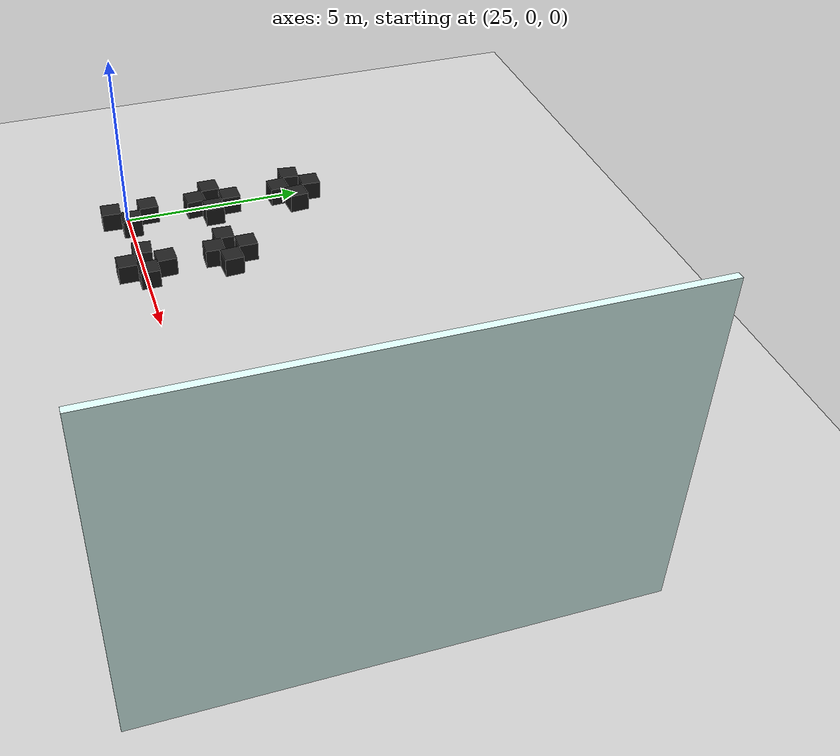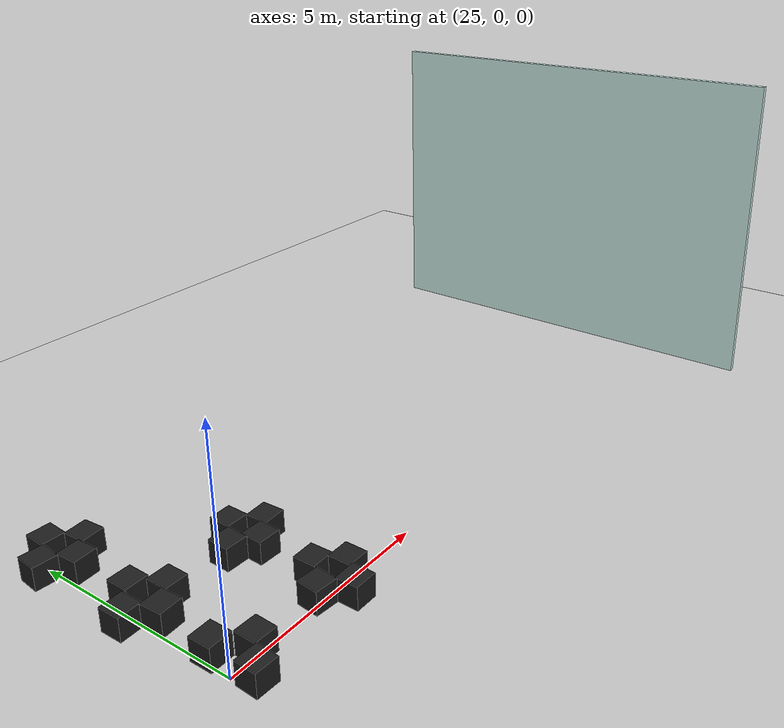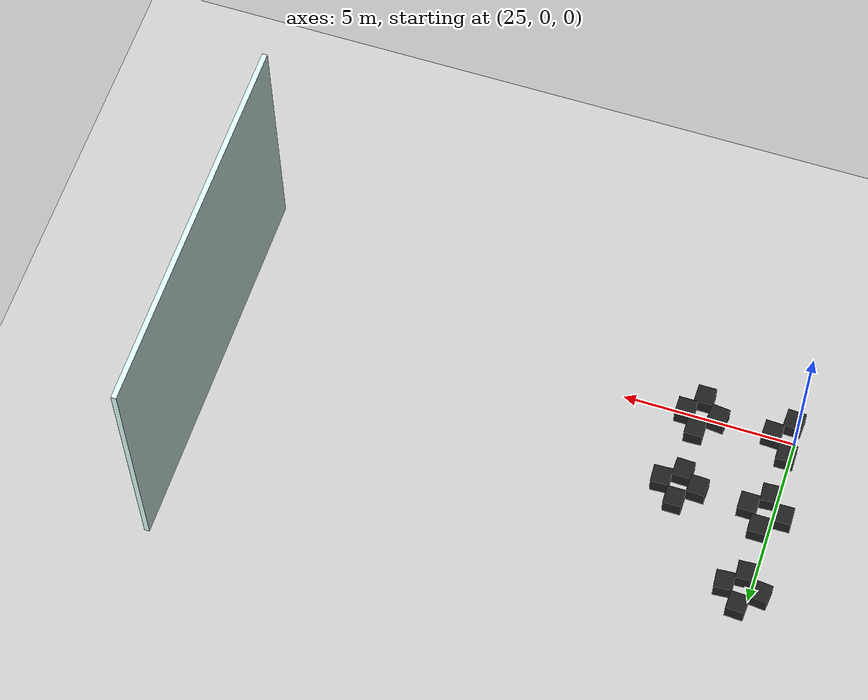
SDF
<sdf version="1.6">
 <world name="default">
  <model name="ground_plane">
   <static>1</static>
   <link name="link">
    <collision name="collision">
     <geometry><plane><normal>0 0 1</normal><size>100 100</size></plane></geometry>
     <surface>
      <contact><collide_bitmask>65535</collide_bitmask></contact>
      <friction><ode><mu>100</mu><mu2>50</mu2></ode></friction>
     </surface>
    </collision>
    <visual name="visual">
     <cast_shadows>0</cast_shadows>
     <geometry><plane><normal>0 0 1</normal><size>100 100</size></plane></geometry>
     <material>
      <script><uri>file://media/materials/scripts/gazebo.material</uri><name>Gazebo/Grey</name></script>
     </material>
    </visual>
   </link>
  </model>
  <model name="unit_box_0_clone_22_clone_15_clone_19">
   <link name="link">
    <inertial>
     <mass>1</mass>
     <inertia>
      <ixx>0.166667</ixx>
      <ixy>0</ixy>
      <ixz>0</ixz>
      <iyy>0.166667</iyy>
      <iyz>0</iyz>
      <izz>0.166667</izz>
     </inertia>
    </inertial>
    <visual name="visual">
     <geometry><box><size>0.530101 0.530101 0.530101</size></box></geometry>
     <material>
      <script><name>Gazebo/FlatBlack</name><uri>file://media/materials/scripts/gazebo.material</uri></script>
      <shader type="pixel"><normal_map>__default__</normal_map></shader>
      <ambient>0.1 0.1 0.1 1</ambient>
      <diffuse>0.1 0.1 0.1 1</diffuse>
      <specular>0.01 0.01 0.01 1</specular>
      <emissive>0 0 0 1</emissive>
     </material>
    </visual>
    <collision name="collision">
     <geometry><box><size>0.530101 0.530101 0.530101</size></box></geometry>
     <surface>
      <friction>
       <ode><mu>1</mu><mu2>1</mu2><fdir1>0 0 0</fdir1><slip1>0</slip1><slip2>0</slip2></ode>
       <torsional>
        <coefficient>1</coefficient>
        <patch_radius>0</patch_radius>
        <surface_radius>0</surface_radius>
        <use_patch_radius>1</use_patch_radius>
        <ode><slip>0</slip></ode>
       </torsional>
      </friction>
      <bounce><restitution_coefficient>0</restitution_coefficient><threshold>1e+06</threshold></bounce>
      <contact>
       <collide_without_contact>0</collide_without_contact>
       <collide_without_contact_bitmask>1</collide_without_contact_bitmask>
       <collide_bitmask>1</collide_bitmask>
       <ode>
        <soft_cfm>0</soft_cfm>
        <soft_erp>0.2</soft_erp>
        <kp>1e+13</kp>
        <kd>1</kd>
        <max_vel>0.01</max_vel>
        <min_depth>0</min_depth>
       </ode>
       <bullet>
        <split_impulse>1</split_impulse>
        <split_impulse_penetration_threshold>-0.01</split_impulse_penetration_threshold>
        <soft_cfm>0</soft_cfm>
        <soft_erp>0.2</soft_erp>
        <kp>1e+13</kp>
        <kd>1</kd>
       </bullet>
      </contact>
     </surface>
    </collision>
   </link>
   <static>0</static>
   <pose>25.1706 -0.484055 0.314113 0 0 -0.043482</pose>
  </model>
  <model name="unit_box_0_clone_22_clone_15_clone_20">
   <link name="link">
    <inertial>
     <mass>1</mass>
     <inertia>
      <ixx>0.166667</ixx>
      <ixy>0</ixy>
      <ixz>0</ixz>
      <iyy>0.166667</iyy>
      <iyz>0</iyz>
      <izz>0.166667</izz>
     </inertia>
    </inertial>
    <visual name="visual">
     <geometry><box><size>0.530101 0.530101 0.530101</size></box></geometry>
     <material>
      <script><name>Gazebo/FlatBlack</name><uri>file://media/materials/scripts/gazebo.material</uri></script>
      <shader type="pixel"><normal_map>__default__</normal_map></shader>
      <ambient>0.1 0.1 0.1 1</ambient>
      <diffuse>0.1 0.1 0.1 1</diffuse>
      <specular>0.01 0.01 0.01 1</specular>
      <emissive>0 0 0 1</emissive>
     </material>
    </visual>
    <collision name="collision">
     <geometry><box><size>0.530101 0.530101 0.530101</size></box></geometry>
     <surface>
      <friction>
       <ode><mu>1</mu><mu2>1</mu2><fdir1>0 0 0</fdir1><slip1>0</slip1><slip2>0</slip2></ode>
       <torsional>
        <coefficient>1</coefficient>
        <patch_radius>0</patch_radius>
        <surface_radius>0</surface_radius>
        <use_patch_radius>1</use_patch_radius>
        <ode><slip>0</slip></ode>
       </torsional>
      </friction>
      <bounce><restitution_coefficient>0</restitution_coefficient><threshold>1e+06</threshold></bounce>
      <contact>
       <collide_without_contact>0</collide_without_contact>
       <collide_without_contact_bitmask>1</collide_without_contact_bitmask>
       <collide_bitmask>1</collide_bitmask>
       <ode>
        <soft_cfm>0</soft_cfm>
        <soft_erp>0.2</soft_erp>
        <kp>1e+13</kp>
        <kd>1</kd>
        <max_vel>0.01</max_vel>
        <min_depth>0</min_depth>
       </ode>
       <bullet>
        <split_impulse>1</split_impulse>
        <split_impulse_penetration_threshold>-0.01</split_impulse_penetration_threshold>
        <soft_cfm>0</soft_cfm>
        <soft_erp>0.2</soft_erp>
        <kp>1e+13</kp>
        <kd>1</kd>
       </bullet>
      </contact>
     </surface>
    </collision>
   </link>
   <static>0</static>
   <pose>25.6728 0.028117 0.314112 0 0 -0.03057</pose>
  </model>
  <model name="unit_box_0_clone_22_clone_15_clone_22">
   <link name="link">
    <inertial>
     <mass>1</mass>
     <inertia>
      <ixx>0.166667</ixx>
      <ixy>0</ixy>
      <ixz>0</ixz>
      <iyy>0.166667</iyy>
      <iyz>0</iyz>
      <izz>0.166667</izz>
     </inertia>
    </inertial>
    <visual name="visual">
     <geometry><box><size>0.530101 0.530101 0.530101</size></box></geometry>
     <material>
      <script><name>Gazebo/FlatBlack</name><uri>file://media/materials/scripts/gazebo.material</uri></script>
      <shader type="pixel"><normal_map>__default__</normal_map></shader>
      <ambient>0.1 0.1 0.1 1</ambient>
      <diffuse>0.1 0.1 0.1 1</diffuse>
      <specular>0.01 0.01 0.01 1</specular>
      <emissive>0 0 0 1</emissive>
     </material>
    </visual>
    <collision name="collision">
     <geometry><box><size>0.530101 0.530101 0.530101</size></box></geometry>
     <surface>
      <friction>
       <ode><mu>1</mu><mu2>1</mu2><fdir1>0 0 0</fdir1><slip1>0</slip1><slip2>0</slip2></ode>
       <torsional>
        <coefficient>1</coefficient>
        <patch_radius>0</patch_radius>
        <surface_radius>0</surface_radius>
        <use_patch_radius>1</use_patch_radius>
        <ode><slip>0</slip></ode>
       </torsional>
      </friction>
      <bounce><restitution_coefficient>0</restitution_coefficient><threshold>1e+06</threshold></bounce>
      <contact>
       <collide_without_contact>0</collide_without_contact>
       <collide_without_contact_bitmask>1</collide_without_contact_bitmask>
       <collide_bitmask>1</collide_bitmask>
       <ode>
        <soft_cfm>0</soft_cfm>
        <soft_erp>0.2</soft_erp>
        <kp>1e+13</kp>
        <kd>1</kd>
        <max_vel>0.01</max_vel>
        <min_depth>0</min_depth>
       </ode>
       <bullet>
        <split_impulse>1</split_impulse>
        <split_impulse_penetration_threshold>-0.01</split_impulse_penetration_threshold>
        <soft_cfm>0</soft_cfm>
        <soft_erp>0.2</soft_erp>
        <kp>1e+13</kp>
        <kd>1</kd>
       </bullet>
      </contact>
     </surface>
    </collision>
   </link>
   <static>0</static>
   <pose>25.1336 0.576128 0.314109 6e-06 -9e-06 0.009665</pose>
  </model>
  <model name="unit_box_0_clone_22_clone_15_clone_23">
   <link name="link">
    <inertial>
     <mass>1</mass>
     <inertia>
      <ixx>0.166667</ixx>
      <ixy>0</ixy>
      <ixz>0</ixz>
      <iyy>0.166667</iyy>
      <iyz>0</iyz>
      <izz>0.166667</izz>
     </inertia>
    </inertial>
    <visual name="visual">
     <geometry><box><size>0.530101 0.530101 0.530101</size></box></geometry>
     <material>
      <script><name>Gazebo/FlatBlack</name><uri>file://media/materials/scripts/gazebo.material</uri></script>
      <shader type="pixel"><normal_map>__default__</normal_map></shader>
      <ambient>0.1 0.1 0.1 1</ambient>
      <diffuse>0.1 0.1 0.1 1</diffuse>
      <specular>0.01 0.01 0.01 1</specular>
      <emissive>0 0 0 1</emissive>
     </material>
    </visual>
    <collision name="collision">
     <geometry><box><size>0.530101 0.530101 0.530101</size></box></geometry>
     <surface>
      <friction>
       <ode><mu>1</mu><mu2>1</mu2><fdir1>0 0 0</fdir1><slip1>0</slip1><slip2>0</slip2></ode>
       <torsional>
        <coefficient>1</coefficient>
        <patch_radius>0</patch_radius>
        <surface_radius>0</surface_radius>
        <use_patch_radius>1</use_patch_radius>
        <ode><slip>0</slip></ode>
       </torsional>
      </friction>
      <bounce><restitution_coefficient>0</restitution_coefficient><threshold>1e+06</threshold></bounce>
      <contact>
       <collide_without_contact>0</collide_without_contact>
       <collide_without_contact_bitmask>1</collide_without_contact_bitmask>
       <collide_bitmask>1</collide_bitmask>
       <ode>
        <soft_cfm>0</soft_cfm>
        <soft_erp>0.2</soft_erp>
        <kp>1e+13</kp>
        <kd>1</kd>
        <max_vel>0.01</max_vel>
        <min_depth>0</min_depth>
       </ode>
       <bullet>
        <split_impulse>1</split_impulse>
        <split_impulse_penetration_threshold>-0.01</split_impulse_penetration_threshold>
        <soft_cfm>0</soft_cfm>
        <soft_erp>0.2</soft_erp>
        <kp>1e+13</kp>
        <kd>1</kd>
       </bullet>
      </contact>
     </surface>
    </collision>
   </link>
   <static>0</static>
   <pose>27.7786 0.582221 0.314108 8e-06 8e-06 0.026242</pose>
  </model>
  <model name="unit_box_0_clone_22_clone_15_clone_24">
   <link name="link">
    <inertial>
     <mass>1</mass>
     <inertia>
      <ixx>0.166667</ixx>
      <ixy>0</ixy>
      <ixz>0</ixz>
      <iyy>0.166667</iyy>
      <iyz>0</iyz>
      <izz>0.166667</izz>
     </inertia>
    </inertial>
    <visual name="visual">
     <geometry><box><size>0.530101 0.530101 0.530101</size></box></geometry>
     <material>
      <script><name>Gazebo/FlatBlack</name><uri>file://media/materials/scripts/gazebo.material</uri></script>
      <shader type="pixel"><normal_map>__default__</normal_map></shader>
      <ambient>0.1 0.1 0.1 1</ambient>
      <diffuse>0.1 0.1 0.1 1</diffuse>
      <specular>0.01 0.01 0.01 1</specular>
      <emissive>0 0 0 1</emissive>
     </material>
    </visual>
    <collision name="collision">
     <geometry><box><size>0.530101 0.530101 0.530101</size></box></geometry>
     <surface>
      <friction>
       <ode><mu>1</mu><mu2>1</mu2><fdir1>0 0 0</fdir1><slip1>0</slip1><slip2>0</slip2></ode>
       <torsional>
        <coefficient>1</coefficient>
        <patch_radius>0</patch_radius>
        <surface_radius>0</surface_radius>
        <use_patch_radius>1</use_patch_radius>
        <ode><slip>0</slip></ode>
       </torsional>
      </friction>
      <bounce><restitution_coefficient>0</restitution_coefficient><threshold>1e+06</threshold></bounce>
      <contact>
       <collide_without_contact>0</collide_without_contact>
       <collide_without_contact_bitmask>1</collide_without_contact_bitmask>
       <collide_bitmask>1</collide_bitmask>
       <ode>
        <soft_cfm>0</soft_cfm>
        <soft_erp>0.2</soft_erp>
        <kp>1e+13</kp>
        <kd>1</kd>
        <max_vel>0.01</max_vel>
        <min_depth>0</min_depth>
       </ode>
       <bullet>
        <split_impulse>1</split_impulse>
        <split_impulse_penetration_threshold>-0.01</split_impulse_penetration_threshold>
        <soft_cfm>0</soft_cfm>
        <soft_erp>0.2</soft_erp>
        <kp>1e+13</kp>
        <kd>1</kd>
       </bullet>
      </contact>
     </surface>
    </collision>
   </link>
   <static>0</static>
   <pose>28.1914 0.055968 0.314108 -8e-06 8e-06 0.000238</pose>
  </model>
  <model name="unit_box_0_clone_22_clone_15_clone_25">
   <link name="link">
    <inertial>
     <mass>1</mass>
     <inertia>
      <ixx>0.166667</ixx>
      <ixy>0</ixy>
      <ixz>0</ixz>
      <iyy>0.166667</iyy>
      <iyz>0</iyz>
      <izz>0.166667</izz>
     </inertia>
    </inertial>
    <visual name="visual">
     <geometry><box><size>0.530101 0.530101 0.530101</size></box></geometry>
     <material>
      <script><name>Gazebo/FlatBlack</name><uri>file://media/materials/scripts/gazebo.material</uri></script>
      <shader type="pixel"><normal_map>__default__</normal_map></shader>
      <ambient>0.1 0.1 0.1 1</ambient>
      <diffuse>0.1 0.1 0.1 1</diffuse>
      <specular>0.01 0.01 0.01 1</specular>
      <emissive>0 0 0 1</emissive>
     </material>
    </visual>
    <collision name="collision">
     <geometry><box><size>0.530101 0.530101 0.530101</size></box></geometry>
     <surface>
      <friction>
       <ode><mu>1</mu><mu2>1</mu2><fdir1>0 0 0</fdir1><slip1>0</slip1><slip2>0</slip2></ode>
       <torsional>
        <coefficient>1</coefficient>
        <patch_radius>0</patch_radius>
        <surface_radius>0</surface_radius>
        <use_patch_radius>1</use_patch_radius>
        <ode><slip>0</slip></ode>
       </torsional>
      </friction>
      <bounce><restitution_coefficient>0</restitution_coefficient><threshold>1e+06</threshold></bounce>
      <contact>
       <collide_without_contact>0</collide_without_contact>
       <collide_without_contact_bitmask>1</collide_without_contact_bitmask>
       <collide_bitmask>1</collide_bitmask>
       <ode>
        <soft_cfm>0</soft_cfm>
        <soft_erp>0.2</soft_erp>
        <kp>1e+13</kp>
        <kd>1</kd>
        <max_vel>0.01</max_vel>
        <min_depth>0</min_depth>
       </ode>
       <bullet>
        <split_impulse>1</split_impulse>
        <split_impulse_penetration_threshold>-0.01</split_impulse_penetration_threshold>
        <soft_cfm>0</soft_cfm>
        <soft_erp>0.2</soft_erp>
        <kp>1e+13</kp>
        <kd>1</kd>
       </bullet>
      </contact>
     </surface>
    </collision>
   </link>
   <static>0</static>
   <pose>27.7682 -0.473896 0.314111 6e-06 -1.1e-05 -0.001947</pose>
  </model>
  <model name="unit_box_0_clone_22_clone_15_clone_26">
   <link name="link">
    <inertial>
     <mass>1</mass>
     <inertia>
      <ixx>0.166667</ixx>
      <ixy>0</ixy>
      <ixz>0</ixz>
      <iyy>0.166667</iyy>
      <iyz>0</iyz>
      <izz>0.166667</izz>
     </inertia>
    </inertial>
    <visual name="visual">
     <geometry><box><size>0.530101 0.530101 0.530101</size></box></geometry>
     <material>
      <script><name>Gazebo/FlatBlack</name><uri>file://media/materials/scripts/gazebo.material</uri></script>
      <shader type="pixel"><normal_map>__default__</normal_map></shader>
      <ambient>0.1 0.1 0.1 1</ambient>
      <diffuse>0.1 0.1 0.1 1</diffuse>
      <specular>0.01 0.01 0.01 1</specular>
      <emissive>0 0 0 1</emissive>
     </material>
    </visual>
    <collision name="collision">
     <geometry><box><size>0.530101 0.530101 0.530101</size></box></geometry>
     <surface>
      <friction>
       <ode><mu>1</mu><mu2>1</mu2><fdir1>0 0 0</fdir1><slip1>0</slip1><slip2>0</slip2></ode>
       <torsional>
        <coefficient>1</coefficient>
        <patch_radius>0</patch_radius>
        <surface_radius>0</surface_radius>
        <use_patch_radius>1</use_patch_radius>
        <ode><slip>0</slip></ode>
       </torsional>
      </friction>
      <bounce><restitution_coefficient>0</restitution_coefficient><threshold>1e+06</threshold></bounce>
      <contact>
       <collide_without_contact>0</collide_without_contact>
       <collide_without_contact_bitmask>1</collide_without_contact_bitmask>
       <collide_bitmask>1</collide_bitmask>
       <ode>
        <soft_cfm>0</soft_cfm>
        <soft_erp>0.2</soft_erp>
        <kp>1e+13</kp>
        <kd>1</kd>
        <max_vel>0.01</max_vel>
        <min_depth>0</min_depth>
       </ode>
       <bullet>
        <split_impulse>1</split_impulse>
        <split_impulse_penetration_threshold>-0.01</split_impulse_penetration_threshold>
        <soft_cfm>0</soft_cfm>
        <soft_erp>0.2</soft_erp>
        <kp>1e+13</kp>
        <kd>1</kd>
       </bullet>
      </contact>
     </surface>
    </collision>
   </link>
   <static>0</static>
   <pose>27.2601 0.026995 0.314114 0 -7e-06 -0.096662</pose>
  </model>
  <model name="unit_box_0_clone_22_clone_15_clone_27">
   <link name="link">
    <inertial>
     <mass>1</mass>
     <inertia>
      <ixx>0.166667</ixx>
      <ixy>0</ixy>
      <ixz>0</ixz>
      <iyy>0.166667</iyy>
      <iyz>0</iyz>
      <izz>0.166667</izz>
     </inertia>
    </inertial>
    <visual name="visual">
     <geometry><box><size>0.530101 0.530101 0.530101</size></box></geometry>
     <material>
      <script><name>Gazebo/FlatBlack</name><uri>file://media/materials/scripts/gazebo.material</uri></script>
      <shader type="pixel"><normal_map>__default__</normal_map></shader>
      <ambient>0.1 0.1 0.1 1</ambient>
      <diffuse>0.1 0.1 0.1 1</diffuse>
      <specular>0.01 0.01 0.01 1</specular>
      <emissive>0 0 0 1</emissive>
     </material>
    </visual>
    <collision name="collision">
     <geometry><box><size>0.530101 0.530101 0.530101</size></box></geometry>
     <surface>
      <friction>
       <ode><mu>1</mu><mu2>1</mu2><fdir1>0 0 0</fdir1><slip1>0</slip1><slip2>0</slip2></ode>
       <torsional>
        <coefficient>1</coefficient>
        <patch_radius>0</patch_radius>
        <surface_radius>0</surface_radius>
        <use_patch_radius>1</use_patch_radius>
        <ode><slip>0</slip></ode>
       </torsional>
      </friction>
      <bounce><restitution_coefficient>0</restitution_coefficient><threshold>1e+06</threshold></bounce>
      <contact>
       <collide_without_contact>0</collide_without_contact>
       <collide_without_contact_bitmask>1</collide_without_contact_bitmask>
       <collide_bitmask>1</collide_bitmask>
       <ode>
        <soft_cfm>0</soft_cfm>
        <soft_erp>0.2</soft_erp>
        <kp>1e+13</kp>
        <kd>1</kd>
        <max_vel>0.01</max_vel>
        <min_depth>0</min_depth>
       </ode>
       <bullet>
        <split_impulse>1</split_impulse>
        <split_impulse_penetration_threshold>-0.01</split_impulse_penetration_threshold>
        <soft_cfm>0</soft_cfm>
        <soft_erp>0.2</soft_erp>
        <kp>1e+13</kp>
        <kd>1</kd>
       </bullet>
      </contact>
     </surface>
    </collision>
   </link>
   <static>0</static>
   <pose>25.2541 4.39524 0.314107 -8e-06 -9e-06 0.062168</pose>
  </model>
  <model name="unit_box_0_clone_22_clone_15_clone_28">
   <link name="link">
    <inertial>
     <mass>1</mass>
     <inertia>
      <ixx>0.166667</ixx>
      <ixy>0</ixy>
      <ixz>0</ixz>
      <iyy>0.166667</iyy>
      <iyz>0</iyz>
      <izz>0.166667</izz>
     </inertia>
    </inertial>
    <visual name="visual">
     <geometry><box><size>0.530101 0.530101 0.530101</size></box></geometry>
     <material>
      <script><name>Gazebo/FlatBlack</name><uri>file://media/materials/scripts/gazebo.material</uri></script>
      <shader type="pixel"><normal_map>__default__</normal_map></shader>
      <ambient>0.1 0.1 0.1 1</ambient>
      <diffuse>0.1 0.1 0.1 1</diffuse>
      <specular>0.01 0.01 0.01 1</specular>
      <emissive>0 0 0 1</emissive>
     </material>
    </visual>
    <collision name="collision">
     <geometry><box><size>0.530101 0.530101 0.530101</size></box></geometry>
     <surface>
      <friction>
       <ode><mu>1</mu><mu2>1</mu2><fdir1>0 0 0</fdir1><slip1>0</slip1><slip2>0</slip2></ode>
       <torsional>
        <coefficient>1</coefficient>
        <patch_radius>0</patch_radius>
        <surface_radius>0</surface_radius>
        <use_patch_radius>1</use_patch_radius>
        <ode><slip>0</slip></ode>
       </torsional>
      </friction>
      <bounce><restitution_coefficient>0</restitution_coefficient><threshold>1e+06</threshold></bounce>
      <contact>
       <collide_without_contact>0</collide_without_contact>
       <collide_without_contact_bitmask>1</collide_without_contact_bitmask>
       <collide_bitmask>1</collide_bitmask>
       <ode>
        <soft_cfm>0</soft_cfm>
        <soft_erp>0.2</soft_erp>
        <kp>1e+13</kp>
        <kd>1</kd>
        <max_vel>0.01</max_vel>
        <min_depth>0</min_depth>
       </ode>
       <bullet>
        <split_impulse>1</split_impulse>
        <split_impulse_penetration_threshold>-0.01</split_impulse_penetration_threshold>
        <soft_cfm>0</soft_cfm>
        <soft_erp>0.2</soft_erp>
        <kp>1e+13</kp>
        <kd>1</kd>
       </bullet>
      </contact>
     </surface>
    </collision>
   </link>
   <static>0</static>
   <pose>25.7556 4.83506 0.31411 -8e-06 -2e-06 0.078335</pose>
  </model>
  <model name="unit_box_0_clone_22_clone_15_clone_29">
   <link name="link">
    <inertial>
     <mass>1</mass>
     <inertia>
      <ixx>0.166667</ixx>
      <ixy>0</ixy>
      <ixz>0</ixz>
      <iyy>0.166667</iyy>
      <iyz>0</iyz>
      <izz>0.166667</izz>
     </inertia>
    </inertial>
    <visual name="visual">
     <geometry><box><size>0.530101 0.530101 0.530101</size></box></geometry>
     <material>
      <script><name>Gazebo/FlatBlack</name><uri>file://media/materials/scripts/gazebo.material</uri></script>
      <shader type="pixel"><normal_map>__default__</normal_map></shader>
      <ambient>0.1 0.1 0.1 1</ambient>
      <diffuse>0.1 0.1 0.1 1</diffuse>
      <specular>0.01 0.01 0.01 1</specular>
      <emissive>0 0 0 1</emissive>
     </material>
    </visual>
    <collision name="collision">
     <geometry><box><size>0.530101 0.530101 0.530101</size></box></geometry>
     <surface>
      <friction>
       <ode><mu>1</mu><mu2>1</mu2><fdir1>0 0 0</fdir1><slip1>0</slip1><slip2>0</slip2></ode>
       <torsional>
        <coefficient>1</coefficient>
        <patch_radius>0</patch_radius>
        <surface_radius>0</surface_radius>
        <use_patch_radius>1</use_patch_radius>
        <ode><slip>0</slip></ode>
       </torsional>
      </friction>
      <bounce><restitution_coefficient>0</restitution_coefficient><threshold>1e+06</threshold></bounce>
      <contact>
       <collide_without_contact>0</collide_without_contact>
       <collide_without_contact_bitmask>1</collide_without_contact_bitmask>
       <collide_bitmask>1</collide_bitmask>
       <ode>
        <soft_cfm>0</soft_cfm>
        <soft_erp>0.2</soft_erp>
        <kp>1e+13</kp>
        <kd>1</kd>
        <max_vel>0.01</max_vel>
        <min_depth>0</min_depth>
       </ode>
       <bullet>
        <split_impulse>1</split_impulse>
        <split_impulse_penetration_threshold>-0.01</split_impulse_penetration_threshold>
        <soft_cfm>0</soft_cfm>
        <soft_erp>0.2</soft_erp>
        <kp>1e+13</kp>
        <kd>1</kd>
       </bullet>
      </contact>
     </surface>
    </collision>
   </link>
   <static>0</static>
   <pose>24.7276 4.85825 0.314111 -7e-06 2e-06 -0.096361</pose>
  </model>
  <model name="unit_box_0_clone_22_clone_15_clone_30">
   <link name="link">
    <inertial>
     <mass>1</mass>
     <inertia>
      <ixx>0.166667</ixx>
      <ixy>0</ixy>
      <ixz>0</ixz>
      <iyy>0.166667</iyy>
      <iyz>0</iyz>
      <izz>0.166667</izz>
     </inertia>
    </inertial>
    <visual name="visual">
     <geometry><box><size>0.530101 0.530101 0.530101</size></box></geometry>
     <material>
      <script><name>Gazebo/FlatBlack</name><uri>file://media/materials/scripts/gazebo.material</uri></script>
      <shader type="pixel"><normal_map>__default__</normal_map></shader>
      <ambient>0.1 0.1 0.1 1</ambient>
      <diffuse>0.1 0.1 0.1 1</diffuse>
      <specular>0.01 0.01 0.01 1</specular>
      <emissive>0 0 0 1</emissive>
     </material>
    </visual>
    <collision name="collision">
     <geometry><box><size>0.530101 0.530101 0.530101</size></box></geometry>
     <surface>
      <friction>
       <ode><mu>1</mu><mu2>1</mu2><fdir1>0 0 0</fdir1><slip1>0</slip1><slip2>0</slip2></ode>
       <torsional>
        <coefficient>1</coefficient>
        <patch_radius>0</patch_radius>
        <surface_radius>0</surface_radius>
        <use_patch_radius>1</use_patch_radius>
        <ode><slip>0</slip></ode>
       </torsional>
      </friction>
      <bounce><restitution_coefficient>0</restitution_coefficient><threshold>1e+06</threshold></bounce>
      <contact>
       <collide_without_contact>0</collide_without_contact>
       <collide_without_contact_bitmask>1</collide_without_contact_bitmask>
       <collide_bitmask>1</collide_bitmask>
       <ode>
        <soft_cfm>0</soft_cfm>
        <soft_erp>0.2</soft_erp>
        <kp>1e+13</kp>
        <kd>1</kd>
        <max_vel>0.01</max_vel>
        <min_depth>0</min_depth>
       </ode>
       <bullet>
        <split_impulse>1</split_impulse>
        <split_impulse_penetration_threshold>-0.01</split_impulse_penetration_threshold>
        <soft_cfm>0</soft_cfm>
        <soft_erp>0.2</soft_erp>
        <kp>1e+13</kp>
        <kd>1</kd>
       </bullet>
      </contact>
     </surface>
    </collision>
   </link>
   <static>0</static>
   <pose>25.2508 5.35834 0.314107 8e-06 8e-06 -0.046997</pose>
  </model>
  <model name="unit_box_0_clone_22_clone_15_clone_31">
   <link name="link">
    <inertial>
     <mass>1</mass>
     <inertia>
      <ixx>0.166667</ixx>
      <ixy>0</ixy>
      <ixz>0</ixz>
      <iyy>0.166667</iyy>
      <iyz>0</iyz>
      <izz>0.166667</izz>
     </inertia>
    </inertial>
    <visual name="visual">
     <geometry><box><size>0.530101 0.530101 0.530101</size></box></geometry>
     <material>
      <script><name>Gazebo/FlatBlack</name><uri>file://media/materials/scripts/gazebo.material</uri></script>
      <shader type="pixel"><normal_map>__default__</normal_map></shader>
      <ambient>0.1 0.1 0.1 1</ambient>
      <diffuse>0.1 0.1 0.1 1</diffuse>
      <specular>0.01 0.01 0.01 1</specular>
      <emissive>0 0 0 1</emissive>
     </material>
    </visual>
    <collision name="collision">
     <geometry><box><size>0.530101 0.530101 0.530101</size></box></geometry>
     <surface>
      <friction>
       <ode><mu>1</mu><mu2>1</mu2><fdir1>0 0 0</fdir1><slip1>0</slip1><slip2>0</slip2></ode>
       <torsional>
        <coefficient>1</coefficient>
        <patch_radius>0</patch_radius>
        <surface_radius>0</surface_radius>
        <use_patch_radius>1</use_patch_radius>
        <ode><slip>0</slip></ode>
       </torsional>
      </friction>
      <bounce><restitution_coefficient>0</restitution_coefficient><threshold>1e+06</threshold></bounce>
      <contact>
       <collide_without_contact>0</collide_without_contact>
       <collide_without_contact_bitmask>1</collide_without_contact_bitmask>
       <collide_bitmask>1</collide_bitmask>
       <ode>
        <soft_cfm>0</soft_cfm>
        <soft_erp>0.2</soft_erp>
        <kp>1e+13</kp>
        <kd>1</kd>
        <max_vel>0.01</max_vel>
        <min_depth>0</min_depth>
       </ode>
       <bullet>
        <split_impulse>1</split_impulse>
        <split_impulse_penetration_threshold>-0.01</split_impulse_penetration_threshold>
        <soft_cfm>0</soft_cfm>
        <soft_erp>0.2</soft_erp>
        <kp>1e+13</kp>
        <kd>1</kd>
       </bullet>
      </contact>
     </surface>
    </collision>
   </link>
   <static>0</static>
   <pose>24.7313 2.44009 0.314109 -6e-06 9e-06 0.019399</pose>
  </model>
  <model name="unit_box_0_clone_22_clone_15_clone_32">
   <link name="link">
    <inertial>
     <mass>1</mass>
     <inertia>
      <ixx>0.166667</ixx>
      <ixy>0</ixy>
      <ixz>0</ixz>
      <iyy>0.166667</iyy>
      <iyz>0</iyz>
      <izz>0.166667</izz>
     </inertia>
    </inertial>
    <visual name="visual">
     <geometry><box><size>0.530101 0.530101 0.530101</size></box></geometry>
     <material>
      <script><name>Gazebo/FlatBlack</name><uri>file://media/materials/scripts/gazebo.material</uri></script>
      <shader type="pixel"><normal_map>__default__</normal_map></shader>
      <ambient>0.1 0.1 0.1 1</ambient>
      <diffuse>0.1 0.1 0.1 1</diffuse>
      <specular>0.01 0.01 0.01 1</specular>
      <emissive>0 0 0 1</emissive>
     </material>
    </visual>
    <collision name="collision">
     <geometry><box><size>0.530101 0.530101 0.530101</size></box></geometry>
     <surface>
      <friction>
       <ode><mu>1</mu><mu2>1</mu2><fdir1>0 0 0</fdir1><slip1>0</slip1><slip2>0</slip2></ode>
       <torsional>
        <coefficient>1</coefficient>
        <patch_radius>0</patch_radius>
        <surface_radius>0</surface_radius>
        <use_patch_radius>1</use_patch_radius>
        <ode><slip>0</slip></ode>
       </torsional>
      </friction>
      <bounce><restitution_coefficient>0</restitution_coefficient><threshold>1e+06</threshold></bounce>
      <contact>
       <collide_without_contact>0</collide_without_contact>
       <collide_without_contact_bitmask>1</collide_without_contact_bitmask>
       <collide_bitmask>1</collide_bitmask>
       <ode>
        <soft_cfm>0</soft_cfm>
        <soft_erp>0.2</soft_erp>
        <kp>1e+13</kp>
        <kd>1</kd>
        <max_vel>0.01</max_vel>
        <min_depth>0</min_depth>
       </ode>
       <bullet>
        <split_impulse>1</split_impulse>
        <split_impulse_penetration_threshold>-0.01</split_impulse_penetration_threshold>
        <soft_cfm>0</soft_cfm>
        <soft_erp>0.2</soft_erp>
        <kp>1e+13</kp>
        <kd>1</kd>
       </bullet>
      </contact>
     </surface>
    </collision>
   </link>
   <static>0</static>
   <pose>25.7429 2.36631 0.31411 2e-06 -8e-06 -0.000478</pose>
  </model>
  <model name="unit_box_0_clone_22_clone_15_clone_33">
   <link name="link">
    <inertial>
     <mass>1</mass>
     <inertia>
      <ixx>0.166667</ixx>
      <ixy>0</ixy>
      <ixz>0</ixz>
      <iyy>0.166667</iyy>
      <iyz>0</iyz>
      <izz>0.166667</izz>
     </inertia>
    </inertial>
    <visual name="visual">
     <geometry><box><size>0.530101 0.530101 0.530101</size></box></geometry>
     <material>
      <script><name>Gazebo/FlatBlack</name><uri>file://media/materials/scripts/gazebo.material</uri></script>
      <shader type="pixel"><normal_map>__default__</normal_map></shader>
      <ambient>0.1 0.1 0.1 1</ambient>
      <diffuse>0.1 0.1 0.1 1</diffuse>
      <specular>0.01 0.01 0.01 1</specular>
      <emissive>0 0 0 1</emissive>
     </material>
    </visual>
    <collision name="collision">
     <geometry><box><size>0.530101 0.530101 0.530101</size></box></geometry>
     <surface>
      <friction>
       <ode><mu>1</mu><mu2>1</mu2><fdir1>0 0 0</fdir1><slip1>0</slip1><slip2>0</slip2></ode>
       <torsional>
        <coefficient>1</coefficient>
        <patch_radius>0</patch_radius>
        <surface_radius>0</surface_radius>
        <use_patch_radius>1</use_patch_radius>
        <ode><slip>0</slip></ode>
       </torsional>
      </friction>
      <bounce><restitution_coefficient>0</restitution_coefficient><threshold>1e+06</threshold></bounce>
      <contact>
       <collide_without_contact>0</collide_without_contact>
       <collide_without_contact_bitmask>1</collide_without_contact_bitmask>
       <collide_bitmask>1</collide_bitmask>
       <ode>
        <soft_cfm>0</soft_cfm>
        <soft_erp>0.2</soft_erp>
        <kp>1e+13</kp>
        <kd>1</kd>
        <max_vel>0.01</max_vel>
        <min_depth>0</min_depth>
       </ode>
       <bullet>
        <split_impulse>1</split_impulse>
        <split_impulse_penetration_threshold>-0.01</split_impulse_penetration_threshold>
        <soft_cfm>0</soft_cfm>
        <soft_erp>0.2</soft_erp>
        <kp>1e+13</kp>
        <kd>1</kd>
       </bullet>
      </contact>
     </surface>
    </collision>
   </link>
   <static>0</static>
   <pose>25.3032 2.94291 0.31411 2e-06 -8e-06 6.3e-05</pose>
  </model>
  <model name="unit_box_0_clone_22_clone_15_clone_34">
   <link name="link">
    <inertial>
     <mass>1</mass>
     <inertia>
      <ixx>0.166667</ixx>
      <ixy>0</ixy>
      <ixz>0</ixz>
      <iyy>0.166667</iyy>
      <iyz>0</iyz>
      <izz>0.166667</izz>
     </inertia>
    </inertial>
    <visual name="visual">
     <geometry><box><size>0.530101 0.530101 0.530101</size></box></geometry>
     <material>
      <script><name>Gazebo/FlatBlack</name><uri>file://media/materials/scripts/gazebo.material</uri></script>
      <shader type="pixel"><normal_map>__default__</normal_map></shader>
      <ambient>0.1 0.1 0.1 1</ambient>
      <diffuse>0.1 0.1 0.1 1</diffuse>
      <specular>0.01 0.01 0.01 1</specular>
      <emissive>0 0 0 1</emissive>
     </material>
    </visual>
    <collision name="collision">
     <geometry><box><size>0.530101 0.530101 0.530101</size></box></geometry>
     <surface>
      <friction>
       <ode><mu>1</mu><mu2>1</mu2><fdir1>0 0 0</fdir1><slip1>0</slip1><slip2>0</slip2></ode>
       <torsional>
        <coefficient>1</coefficient>
        <patch_radius>0</patch_radius>
        <surface_radius>0</surface_radius>
        <use_patch_radius>1</use_patch_radius>
        <ode><slip>0</slip></ode>
       </torsional>
      </friction>
      <bounce><restitution_coefficient>0</restitution_coefficient><threshold>1e+06</threshold></bounce>
      <contact>
       <collide_without_contact>0</collide_without_contact>
       <collide_without_contact_bitmask>1</collide_without_contact_bitmask>
       <collide_bitmask>1</collide_bitmask>
       <ode>
        <soft_cfm>0</soft_cfm>
        <soft_erp>0.2</soft_erp>
        <kp>1e+13</kp>
        <kd>1</kd>
        <max_vel>0.01</max_vel>
        <min_depth>0</min_depth>
       </ode>
       <bullet>
        <split_impulse>1</split_impulse>
        <split_impulse_penetration_threshold>-0.01</split_impulse_penetration_threshold>
        <soft_cfm>0</soft_cfm>
        <soft_erp>0.2</soft_erp>
        <kp>1e+13</kp>
        <kd>1</kd>
       </bullet>
      </contact>
     </surface>
    </collision>
   </link>
   <static>0</static>
   <pose>25.2205 1.926 0.314113 0 -0 0.061436</pose>
  </model>
  <model name="unit_box_0_clone_22_clone_15_clone_35">
   <link name="link">
    <inertial>
     <mass>1</mass>
     <inertia>
      <ixx>0.166667</ixx>
      <ixy>0</ixy>
      <ixz>0</ixz>
      <iyy>0.166667</iyy>
      <iyz>0</iyz>
      <izz>0.166667</izz>
     </inertia>
    </inertial>
    <visual name="visual">
     <geometry><box><size>0.530101 0.530101 0.530101</size></box></geometry>
     <material>
      <script><name>Gazebo/FlatBlack</name><uri>file://media/materials/scripts/gazebo.material</uri></script>
      <shader type="pixel"><normal_map>__default__</normal_map></shader>
      <ambient>0.1 0.1 0.1 1</ambient>
      <diffuse>0.1 0.1 0.1 1</diffuse>
      <specular>0.01 0.01 0.01 1</specular>
      <emissive>0 0 0 1</emissive>
     </material>
    </visual>
    <collision name="collision">
     <geometry><box><size>0.530101 0.530101 0.530101</size></box></geometry>
     <surface>
      <friction>
       <ode><mu>1</mu><mu2>1</mu2><fdir1>0 0 0</fdir1><slip1>0</slip1><slip2>0</slip2></ode>
       <torsional>
        <coefficient>1</coefficient>
        <patch_radius>0</patch_radius>
        <surface_radius>0</surface_radius>
        <use_patch_radius>1</use_patch_radius>
        <ode><slip>0</slip></ode>
       </torsional>
      </friction>
      <bounce><restitution_coefficient>0</restitution_coefficient><threshold>1e+06</threshold></bounce>
      <contact>
       <collide_without_contact>0</collide_without_contact>
       <collide_without_contact_bitmask>1</collide_without_contact_bitmask>
       <collide_bitmask>1</collide_bitmask>
       <ode>
        <soft_cfm>0</soft_cfm>
        <soft_erp>0.2</soft_erp>
        <kp>1e+13</kp>
        <kd>1</kd>
        <max_vel>0.01</max_vel>
        <min_depth>0</min_depth>
       </ode>
       <bullet>
        <split_impulse>1</split_impulse>
        <split_impulse_penetration_threshold>-0.01</split_impulse_penetration_threshold>
        <soft_cfm>0</soft_cfm>
        <soft_erp>0.2</soft_erp>
        <kp>1e+13</kp>
        <kd>1</kd>
       </bullet>
      </contact>
     </surface>
    </collision>
   </link>
   <static>0</static>
   <pose>27.731 1.92424 0.314112 0 0 -0.030435</pose>
  </model>
  <model name="unit_box_0_clone_22_clone_15_clone_36">
   <link name="link">
    <inertial>
     <mass>1</mass>
     <inertia>
      <ixx>0.166667</ixx>
      <ixy>0</ixy>
      <ixz>0</ixz>
      <iyy>0.166667</iyy>
      <iyz>0</iyz>
      <izz>0.166667</izz>
     </inertia>
    </inertial>
    <visual name="visual">
     <geometry><box><size>0.530101 0.530101 0.530101</size></box></geometry>
     <material>
      <script><name>Gazebo/FlatBlack</name><uri>file://media/materials/scripts/gazebo.material</uri></script>
      <shader type="pixel"><normal_map>__default__</normal_map></shader>
      <ambient>0.1 0.1 0.1 1</ambient>
      <diffuse>0.1 0.1 0.1 1</diffuse>
      <specular>0.01 0.01 0.01 1</specular>
      <emissive>0 0 0 1</emissive>
     </material>
    </visual>
    <collision name="collision">
     <geometry><box><size>0.530101 0.530101 0.530101</size></box></geometry>
     <surface>
      <friction>
       <ode><mu>1</mu><mu2>1</mu2><fdir1>0 0 0</fdir1><slip1>0</slip1><slip2>0</slip2></ode>
       <torsional>
        <coefficient>1</coefficient>
        <patch_radius>0</patch_radius>
        <surface_radius>0</surface_radius>
        <use_patch_radius>1</use_patch_radius>
        <ode><slip>0</slip></ode>
       </torsional>
      </friction>
      <bounce><restitution_coefficient>0</restitution_coefficient><threshold>1e+06</threshold></bounce>
      <contact>
       <collide_without_contact>0</collide_without_contact>
       <collide_without_contact_bitmask>1</collide_without_contact_bitmask>
       <collide_bitmask>1</collide_bitmask>
       <ode>
        <soft_cfm>0</soft_cfm>
        <soft_erp>0.2</soft_erp>
        <kp>1e+13</kp>
        <kd>1</kd>
        <max_vel>0.01</max_vel>
        <min_depth>0</min_depth>
       </ode>
       <bullet>
        <split_impulse>1</split_impulse>
        <split_impulse_penetration_threshold>-0.01</split_impulse_penetration_threshold>
        <soft_cfm>0</soft_cfm>
        <soft_erp>0.2</soft_erp>
        <kp>1e+13</kp>
        <kd>1</kd>
       </bullet>
      </contact>
     </surface>
    </collision>
   </link>
   <static>0</static>
   <pose>28.2634 2.31228 0.314107 8e-06 7e-06 0.050542</pose>
  </model>
  <model name="unit_box_0_clone_22_clone_15_clone_37">
   <link name="link">
    <inertial>
     <mass>1</mass>
     <inertia>
      <ixx>0.166667</ixx>
      <ixy>0</ixy>
      <ixz>0</ixz>
      <iyy>0.166667</iyy>
      <iyz>0</iyz>
      <izz>0.166667</izz>
     </inertia>
    </inertial>
    <visual name="visual">
     <geometry><box><size>0.530101 0.530101 0.530101</size></box></geometry>
     <material>
      <script><name>Gazebo/FlatBlack</name><uri>file://media/materials/scripts/gazebo.material</uri></script>
      <shader type="pixel"><normal_map>__default__</normal_map></shader>
      <ambient>0.1 0.1 0.1 1</ambient>
      <diffuse>0.1 0.1 0.1 1</diffuse>
      <specular>0.01 0.01 0.01 1</specular>
      <emissive>0 0 0 1</emissive>
     </material>
    </visual>
    <collision name="collision">
     <geometry><box><size>0.530101 0.530101 0.530101</size></box></geometry>
     <surface>
      <friction>
       <ode><mu>1</mu><mu2>1</mu2><fdir1>0 0 0</fdir1><slip1>0</slip1><slip2>0</slip2></ode>
       <torsional>
        <coefficient>1</coefficient>
        <patch_radius>0</patch_radius>
        <surface_radius>0</surface_radius>
        <use_patch_radius>1</use_patch_radius>
        <ode><slip>0</slip></ode>
       </torsional>
      </friction>
      <bounce><restitution_coefficient>0</restitution_coefficient><threshold>1e+06</threshold></bounce>
      <contact>
       <collide_without_contact>0</collide_without_contact>
       <collide_without_contact_bitmask>1</collide_without_contact_bitmask>
       <collide_bitmask>1</collide_bitmask>
       <ode>
        <soft_cfm>0</soft_cfm>
        <soft_erp>0.2</soft_erp>
        <kp>1e+13</kp>
        <kd>1</kd>
        <max_vel>0.01</max_vel>
        <min_depth>0</min_depth>
       </ode>
       <bullet>
        <split_impulse>1</split_impulse>
        <split_impulse_penetration_threshold>-0.01</split_impulse_penetration_threshold>
        <soft_cfm>0</soft_cfm>
        <soft_erp>0.2</soft_erp>
        <kp>1e+13</kp>
        <kd>1</kd>
       </bullet>
      </contact>
     </surface>
    </collision>
   </link>
   <static>0</static>
   <pose>27.7451 2.83349 0.314113 0 0 -0.000991</pose>
  </model>
  <model name="unit_box_0_clone_22_clone_15_clone_38">
   <link name="link">
    <inertial>
     <mass>1</mass>
     <inertia>
      <ixx>0.166667</ixx>
      <ixy>0</ixy>
      <ixz>0</ixz>
      <iyy>0.166667</iyy>
      <iyz>0</iyz>
      <izz>0.166667</izz>
     </inertia>
    </inertial>
    <visual name="visual">
     <geometry><box><size>0.530101 0.530101 0.530101</size></box></geometry>
     <material>
      <script><name>Gazebo/FlatBlack</name><uri>file://media/materials/scripts/gazebo.material</uri></script>
      <shader type="pixel"><normal_map>__default__</normal_map></shader>
      <ambient>0.1 0.1 0.1 1</ambient>
      <diffuse>0.1 0.1 0.1 1</diffuse>
      <specular>0.01 0.01 0.01 1</specular>
      <emissive>0 0 0 1</emissive>
     </material>
    </visual>
    <collision name="collision">
     <geometry><box><size>0.530101 0.530101 0.530101</size></box></geometry>
     <surface>
      <friction>
       <ode><mu>1</mu><mu2>1</mu2><fdir1>0 0 0</fdir1><slip1>0</slip1><slip2>0</slip2></ode>
       <torsional>
        <coefficient>1</coefficient>
        <patch_radius>0</patch_radius>
        <surface_radius>0</surface_radius>
        <use_patch_radius>1</use_patch_radius>
        <ode><slip>0</slip></ode>
       </torsional>
      </friction>
      <bounce><restitution_coefficient>0</restitution_coefficient><threshold>1e+06</threshold></bounce>
      <contact>
       <collide_without_contact>0</collide_without_contact>
       <collide_without_contact_bitmask>1</collide_without_contact_bitmask>
       <collide_bitmask>1</collide_bitmask>
       <ode>
        <soft_cfm>0</soft_cfm>
        <soft_erp>0.2</soft_erp>
        <kp>1e+13</kp>
        <kd>1</kd>
        <max_vel>0.01</max_vel>
        <min_depth>0</min_depth>
       </ode>
       <bullet>
        <split_impulse>1</split_impulse>
        <split_impulse_penetration_threshold>-0.01</split_impulse_penetration_threshold>
        <soft_cfm>0</soft_cfm>
        <soft_erp>0.2</soft_erp>
        <kp>1e+13</kp>
        <kd>1</kd>
       </bullet>
      </contact>
     </surface>
    </collision>
   </link>
   <static>0</static>
   <pose>27.2108 2.30799 0.314112 0 0 -0.034252</pose>
  </model>
  <model name="world_frame">
   <link name="Wall_211">
    <pose>23.7999 0 -0.100255 0 -0 1.56702</pose>
    <visual name="Wall_211_Visual">
     <pose>0 0 4 0 -0 0</pose>
     <geometry><box><size>11 0.15 8</size></box></geometry>
     <material>
      <script><uri>file://media/materials/scripts/gazebo.material</uri><name>Gazebo/Grey</name></script>
      <ambient>0.866667 1 0.972549 1</ambient>
      <shader type="pixel"/>
      <diffuse>0.7 0.7 0.7 1</diffuse>
      <specular>0.01 0.01 0.01 1</specular>
      <emissive>0 0 0 1</emissive>
     </material>
     <meta><layer>0</layer></meta>
    </visual>
    <collision name="Wall_211_Collision">
     <pose>0 0 4 0 -0 0</pose>
     <geometry><box><size>11 0.15 8</size></box></geometry>
     <surface>
      <friction>
       <ode><mu>1</mu><mu2>1</mu2><fdir1>0 0 0</fdir1><slip1>0</slip1><slip2>0</slip2></ode>
       <torsional>
        <coefficient>1</coefficient>
        <patch_radius>0</patch_radius>
        <surface_radius>0</surface_radius>
        <use_patch_radius>1</use_patch_radius>
        <ode><slip>0</slip></ode>
       </torsional>
      </friction>
      <bounce><restitution_coefficient>0</restitution_coefficient><threshold>1e+06</threshold></bounce>
      <contact>
       <collide_without_contact>0</collide_without_contact>
       <collide_without_contact_bitmask>1</collide_without_contact_bitmask>
       <collide_bitmask>1</collide_bitmask>
       <ode>
        <soft_cfm>0</soft_cfm>
        <soft_erp>0.2</soft_erp>
        <kp>1e+13</kp>
        <kd>1</kd>
        <max_vel>0.01</max_vel>
        <min_depth>0</min_depth>
       </ode>
       <bullet>
        <split_impulse>1</split_impulse>
        <split_impulse_penetration_threshold>-0.01</split_impulse_penetration_threshold>
        <soft_cfm>0</soft_cfm>
        <soft_erp>0.2</soft_erp>
        <kp>1e+13</kp>
        <kd>1</kd>
       </bullet>
      </contact>
     </surface>
    </collision>
   </link>
   <static>1</static>
   <pose>17.5761 2.5415 0 0 -0 0</pose>
  </model>
 </world>
</sdf>
